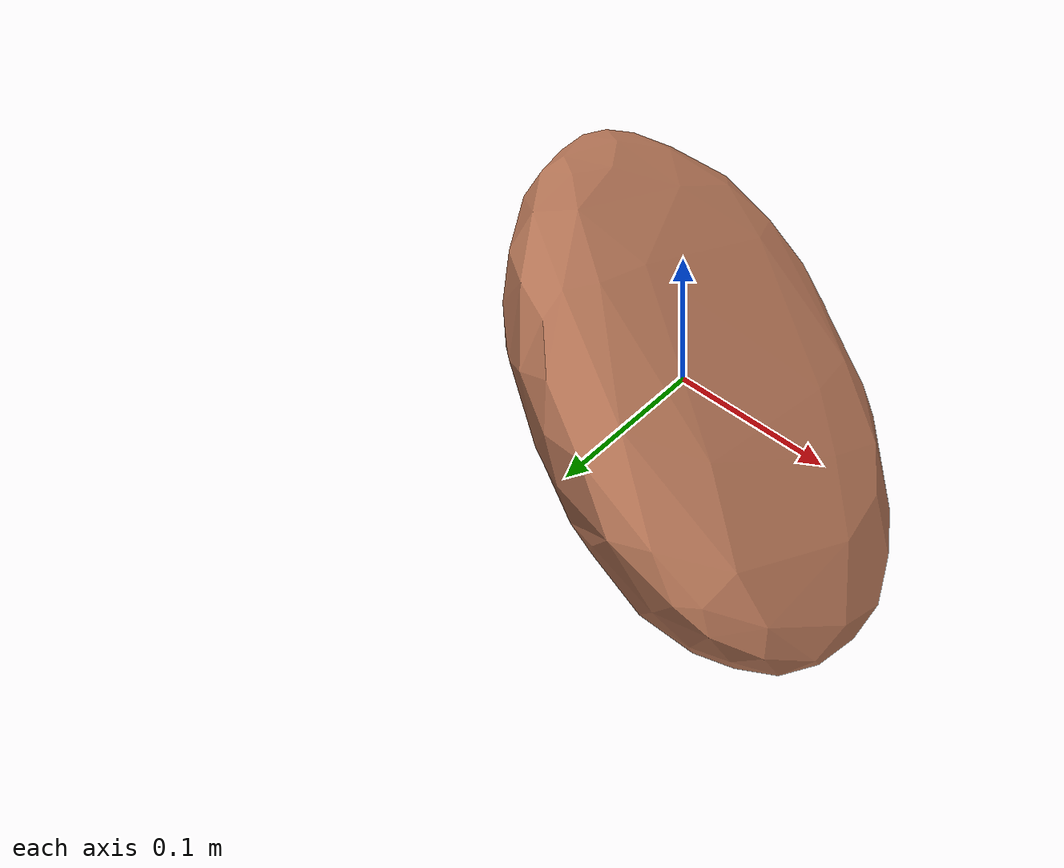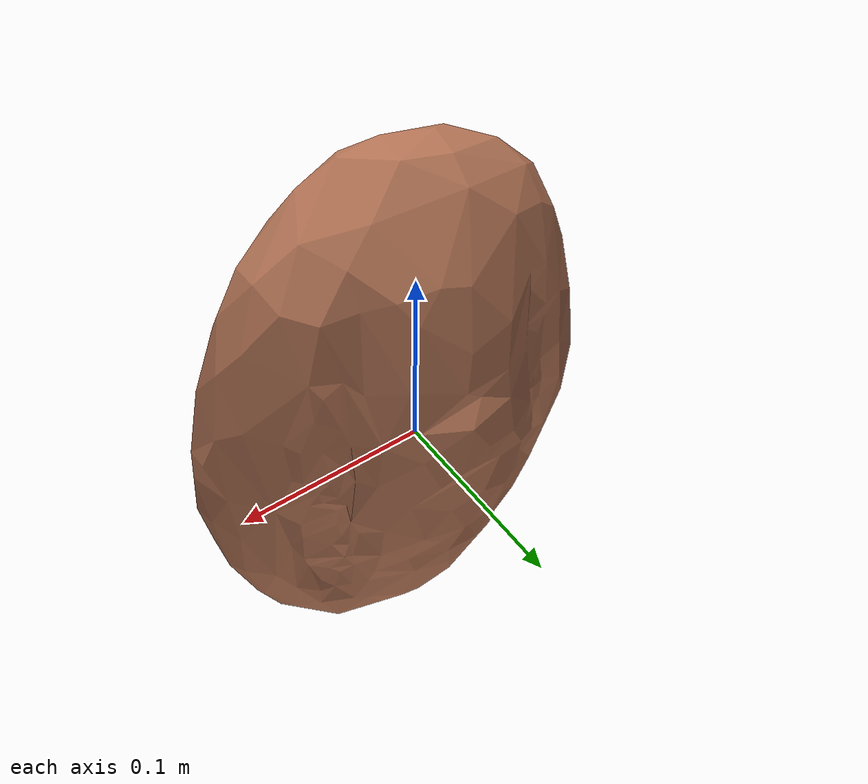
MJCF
<mujoco model="Bread_26">
  <compiler autolimits="true" boundmass="0.01" angle="radian"/>
  <default>
    <default class="/">
      <default class="__VISUAL_MJT__">
        <geom contype="0" conaffinity="0" group="0"/>
      </default>
      <default class="__STRUCTURAL_MJT__">
        <geom contype="8" conaffinity="15" group="4" friction="0.90000000000000002 0.90000000000000002 0.001" solref="0.025000000000000001 1" solimp="0.998 0.998 0.001"/>
      </default>
      <default class="__DYNAMIC_MJT__">
        <geom contype="1" conaffinity="15" group="4" friction="0.90000000000000002 0.90000000000000002 0.001" solref="0.025000000000000001 1" solimp="0.998 0.998 0.001"/>
      </default>
    </default>
  </default>
  <asset>
    <texture name="LoafBread_Mat2" type="2d" file="LoafBread_AlbedoTransparency.png"/>
    <material name="material_LoafBread_Mat2" class="/" texture="LoafBread_Mat2" specular="0.5" shininess="0.5" rgba="0.92647060000000003 0.62109230000000004 0.48367209999999999 1"/>
    <mesh name="Bread_26_loafbread_b_mesh" class="/" file="Bread_26_loafbread_b_mesh/Bread_26_loafbread_b_mesh.obj" scale="1 1 1"/>
  </asset>
  <worldbody>
    <body name="Bread_26">
      <joint name="Bread_26_free" class="/" type="free" pos="0 0 0" axis="0 0 1" stiffness="0" range="0 0" armature="0" damping="0.10000000000000001" frictionloss="0"/>
      <body name="Bread_26_loafbread_b_mesh" pos="-0.00050000000000000001 0.0067299999999999999 -0.0040000000000000001" quat="1 0 0 0">
        <geom name="Bread_26_loafbread_b_mesh" class="__VISUAL_MJT__" type="mesh" material="material_LoafBread_Mat2" shellinertia="false" mesh="Bread_26_loafbread_b_mesh"/>
        <geom name="Bread_26_PrimitiveCollider_0" class="__DYNAMIC_MJT__" type="box" size="0.070648618042469025 0.03418448194861412 0.13284669816493988" rgba="0 1 0 1" pos="-0.000499725341796875 -0.016890509054064751 0.0016957670450210571" quat="1 0 0 0"/>
        <geom name="Bread_26_PrimitiveCollider_1" class="__DYNAMIC_MJT__" type="box" size="0.06632649153470993 0.025001782923936844 0.15795296430587769" rgba="0 1 0 1" pos="-0.000499725341796875 -0.026073209941387177 0.0039997100830078125" quat="1 0 0 0"/>
        <geom name="Bread_26_PrimitiveCollider_2" class="__DYNAMIC_MJT__" type="capsule" size="0.042384408414363861 0.085135646164417267" rgba="0 1 0 1" pos="-0.000499725341796875 -0.0047794519923627377 0.003999707754701376" quat="0.99999999999891198 1.4751396607739272e-06 0 0"/>
        <geom name="Bread_26_PrimitiveCollider_3" class="__DYNAMIC_MJT__" type="box" size="0.10982378572225571 0.026568597182631493 0.11149927973747253" rgba="0 1 0 1" pos="-0.00050000002374872565 -0.023021597415208817 0.0040000001899898052" quat="1 0 0 0"/>
      </body>
    </body>
  </worldbody>
</mujoco>
